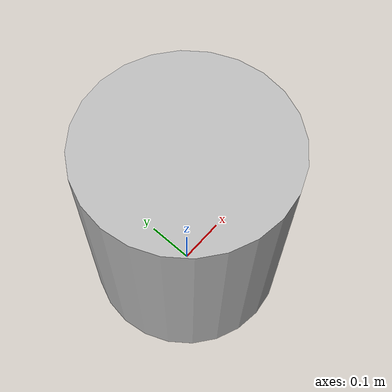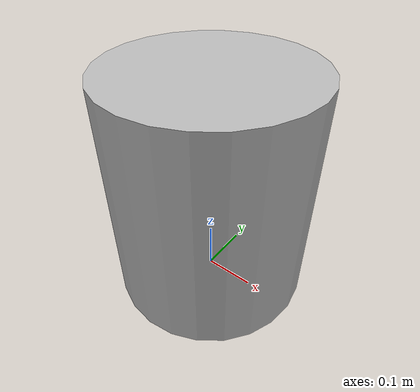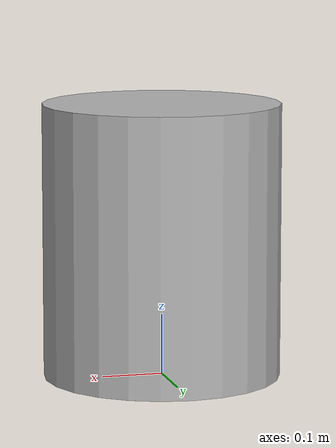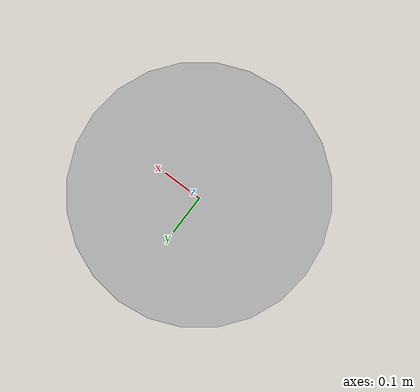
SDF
<?xml version="1.0"?>
<sdf version="1.6">
  <model name="rgo2019/trashbin_large">
    <link name="1_link">
      <collision name="1_col">
        <geometry>
          <cylinder>
            <length>0.45</length>
            <radius>0.195</radius>
          </cylinder>
        </geometry>
      </collision>
      <visual name="1_vis">
        <geometry>
          <cylinder>
            <length>0.45</length>
            <radius>0.195</radius>
          </cylinder>
        </geometry>
      </visual>
      <pose>0 0 0.225 0 0 0</pose>
    </link>
    <link name="on_top_of">
      <virtual_volume name="on_top_of_vv">
        <geometry>
          <cylinder>
            <length>0.25</length>
            <radius>0.19</radius>
          </cylinder>
        </geometry>
      </virtual_volume>
      <pose>0 0 0.585 0 0 0</pose>
    </link>
    <link name="in_front_of">
      <virtual_volume name="in_front_of_vv">
        <geometry>
          <box>
            <size>1.0 1.0 0.01</size>
          </box>
        </geometry>
      </virtual_volume>
      <pose>0 0 0 0 0 0</pose>
    </link>
    <static>true</static>
  </model>
</sdf>
